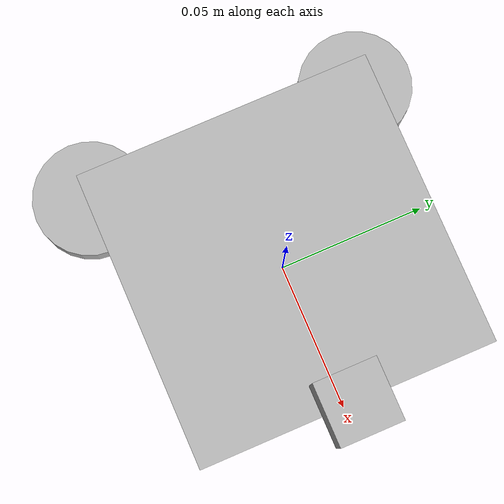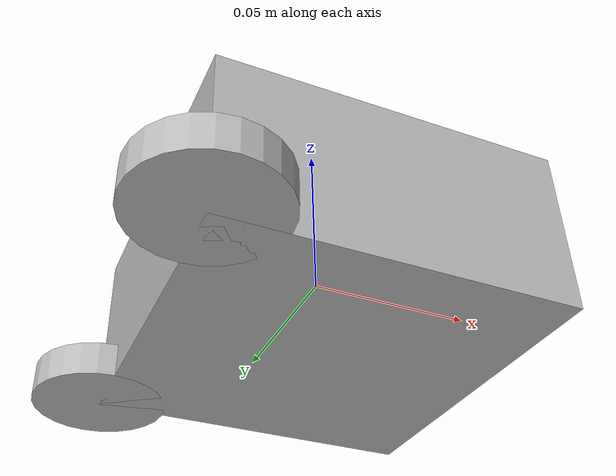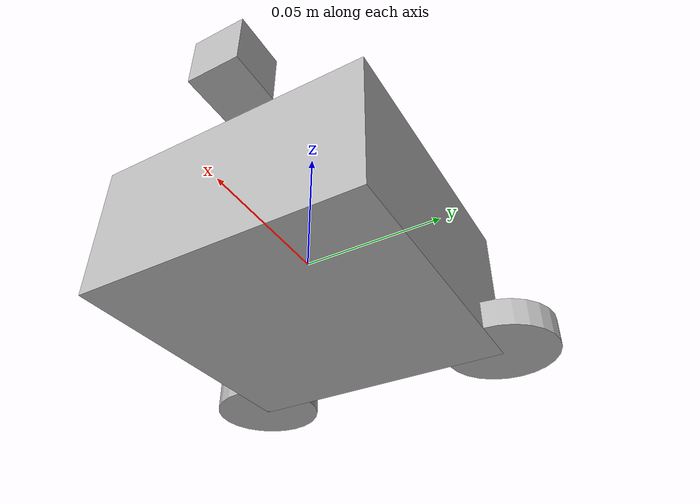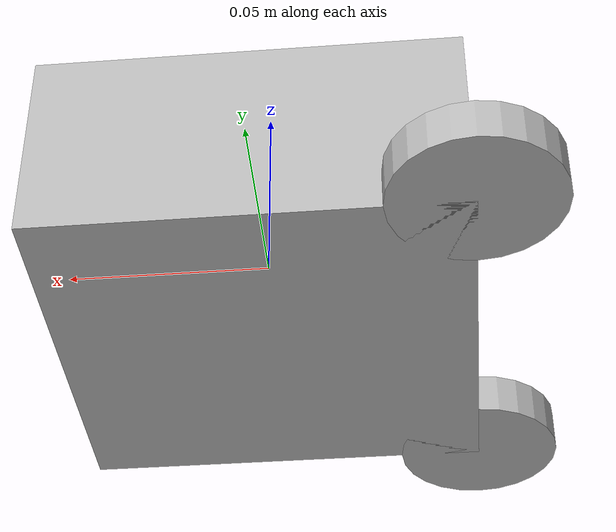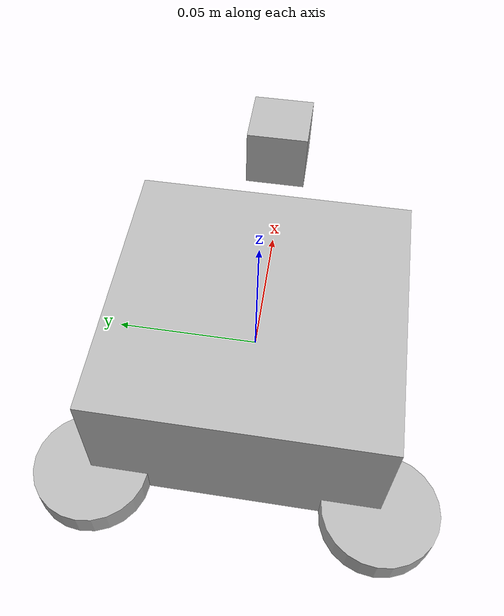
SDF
<sdf version='1.7'>
  <model name='micromouse'>
    <link name='base_link'>
      <inertial>
        <pose>0.004545 0 0.004545 0 -0 0</pose>
        <mass>1.1</mass>
        <inertia>
          <ixx>0.0112273</ixx>
          <ixy>0</ixy>
          <ixz>-0.000227273</ixz>
          <iyy>0.0114545</iyy>
          <iyz>0</iyz>
          <izz>0.0112273</izz>
        </inertia>
      </inertial>
      <collision name='base_link_collision'>
        <pose>0 0 0 0 -0 0</pose>
        <geometry>
          <box>
            <size>0.1 0.1 0.05</size>
          </box>
        </geometry>
      </collision>
      <collision name='base_link_fixed_joint_lump__sensor_collision_1'>
        <pose>0.05 0 0.05 0 -0 0</pose>
        <geometry>
          <box>
            <size>0.02 0.02 0.02</size>
          </box>
        </geometry>
      </collision>
      <visual name='base_link_visual'>
        <pose>0 0 0 0 -0 0</pose>
        <geometry>
          <box>
            <size>0.1 0.1 0.05</size>
          </box>
        </geometry>
      </visual>
      <visual name='base_link_fixed_joint_lump__sensor_visual_1'>
        <pose>0.05 0 0.05 0 -0 0</pose>
        <geometry>
          <box>
            <size>0.02 0.02 0.02</size>
          </box>
        </geometry>
      </visual>
    </link>
    <joint name='left_wheel_joint' type='revolute'>
      <pose relative_to='base_link'>-0.05 0.05 -0.02 0 -0 0</pose>
      <parent>base_link</parent>
      <child>left_wheel</child>
      <axis>
        <xyz>0 1 0</xyz>
        <limit>
          <lower>-1e+16</lower>
          <upper>1e+16</upper>
        </limit>
        <dynamics>
          <spring_reference>0</spring_reference>
          <spring_stiffness>0</spring_stiffness>
        </dynamics>
      </axis>
    </joint>
    <link name='left_wheel'>
      <pose relative_to='left_wheel_joint'>0 0 0 0 -0 0</pose>
      <inertial>
        <pose>0 0 0 0 -0 0</pose>
        <mass>0.2</mass>
        <inertia>
          <ixx>0.001</ixx>
          <ixy>0</ixy>
          <ixz>0</ixz>
          <iyy>0.001</iyy>
          <iyz>0</iyz>
          <izz>0.001</izz>
        </inertia>
      </inertial>
      <collision name='left_wheel_collision'>
        <pose>0 0 0 0 -0 0</pose>
        <geometry>
          <cylinder>
            <length>0.01</length>
            <radius>0.02</radius>
          </cylinder>
        </geometry>
      </collision>
      <visual name='left_wheel_visual'>
        <pose>0 0 0 0 -0 0</pose>
        <geometry>
          <cylinder>
            <length>0.01</length>
            <radius>0.02</radius>
          </cylinder>
        </geometry>
      </visual>
    </link>
    <joint name='right_wheel_joint' type='revolute'>
      <pose relative_to='base_link'>-0.05 -0.05 -0.02 0 -0 0</pose>
      <parent>base_link</parent>
      <child>right_wheel</child>
      <axis>
        <xyz>0 1 0</xyz>
        <limit>
          <lower>-1e+16</lower>
          <upper>1e+16</upper>
        </limit>
        <dynamics>
          <spring_reference>0</spring_reference>
          <spring_stiffness>0</spring_stiffness>
        </dynamics>
      </axis>
    </joint>
    <link name='right_wheel'>
      <pose relative_to='right_wheel_joint'>0 0 0 0 -0 0</pose>
      <inertial>
        <pose>0 0 0 0 -0 0</pose>
        <mass>0.2</mass>
        <inertia>
          <ixx>0.001</ixx>
          <ixy>0</ixy>
          <ixz>0</ixz>
          <iyy>0.001</iyy>
          <iyz>0</iyz>
          <izz>0.001</izz>
        </inertia>
      </inertial>
      <collision name='right_wheel_collision'>
        <pose>0 0 0 0 -0 0</pose>
        <geometry>
          <cylinder>
            <length>0.01</length>
            <radius>0.02</radius>
          </cylinder>
        </geometry>
      </collision>
      <visual name='right_wheel_visual'>
        <pose>0 0 0 0 -0 0</pose>
        <geometry>
          <cylinder>
            <length>0.01</length>
            <radius>0.02</radius>
          </cylinder>
        </geometry>
      </visual>
    </link>
  </model>
</sdf>
